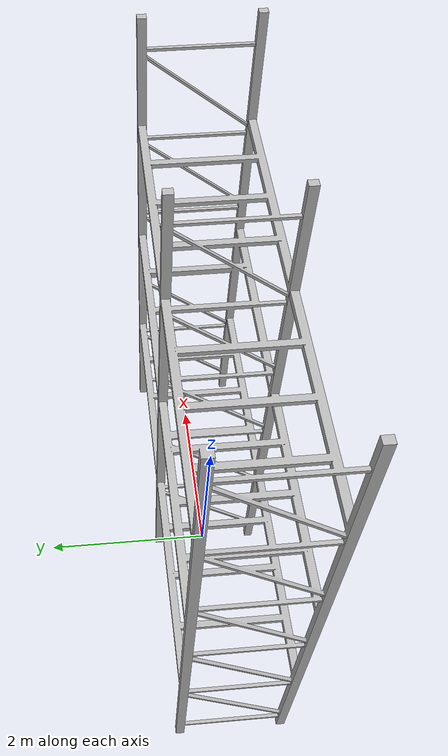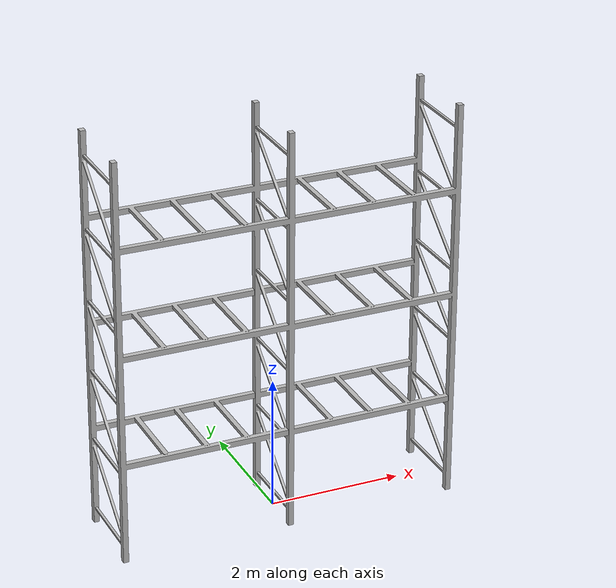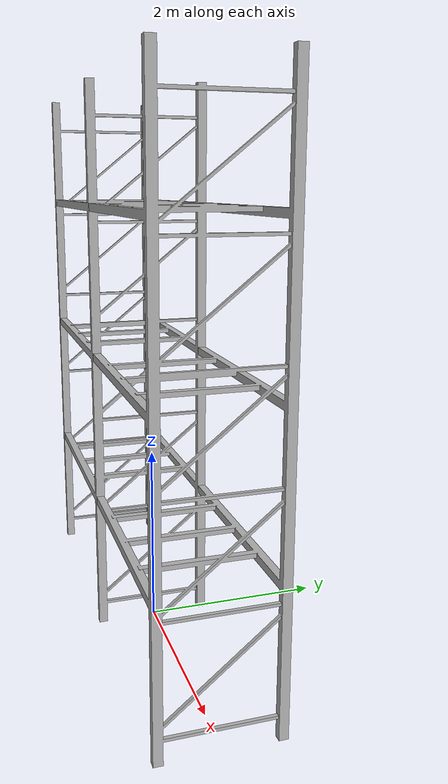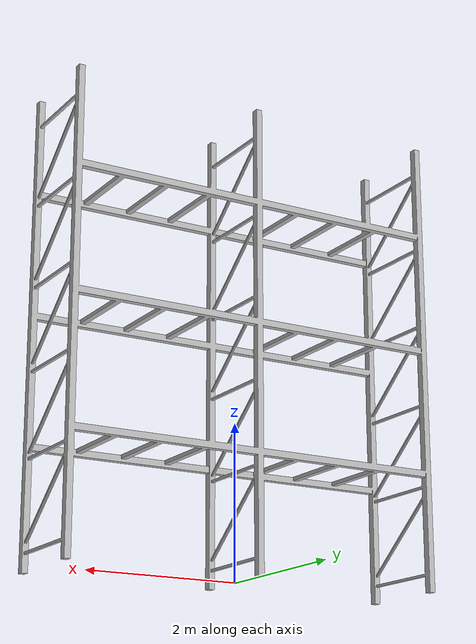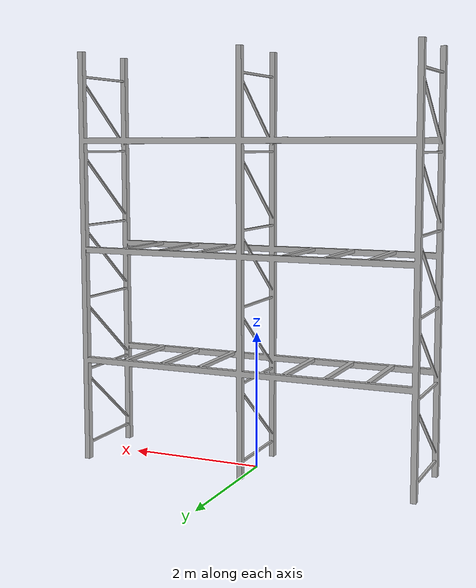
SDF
<?xml version="1.0" ?>
<sdf version="1.5">
  <model name="Shelves high 2">
    <static>true</static>
    <link name="link">
      <collision name="collision">
        <geometry>
          <mesh>
            <uri>model://shelves_high2/meshes/shelves_high2_collision.dae</uri>
            <scale>1 1.2 1.2</scale>
          </mesh>
        </geometry>
      </collision>
      <visual name="visual">
        <geometry>
          <mesh>
            <uri>model://shelves_high2/meshes/shelves_high2.dae</uri>
            <scale>1 1.2 1.2</scale>
          </mesh>
        </geometry>
      </visual>
    </link>
  </model>
</sdf>
